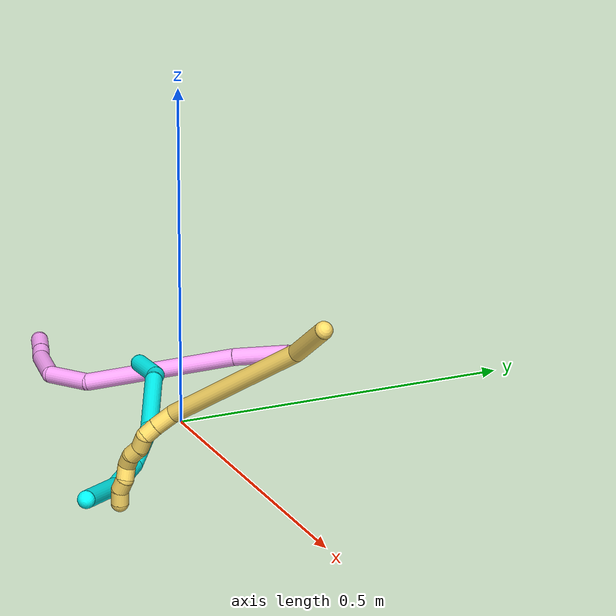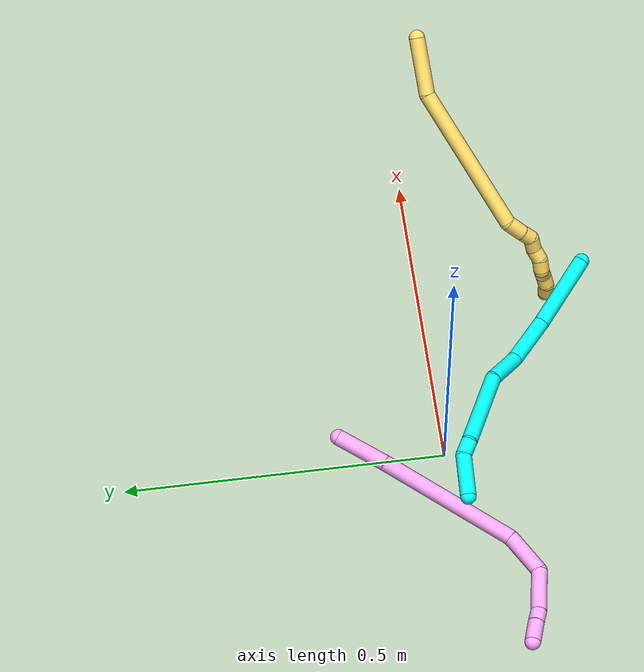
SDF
<sdf version="1.7">
 <world name="default">
  <model name="3">
   <static>0</static>
   <link name="3">
    <collision name="collision-cylinder-e_1_1_4">
     <pose>-0.026768 -0.00228 -0.054024 3.09941 -0.459675 -2.96178</pose>
     <geometry><cylinder><radius>0.0125</radius><length>0.12067</length></cylinder></geometry>
     <surface>
      <friction><ode><mu>1.16</mu><mu2>1.16</mu2><slip1>0</slip1><slip2>0</slip2></ode></friction>
      <contact><ode><kp>1e+06</kp><kd>1</kd><max_vel>0</max_vel><min_depth>0.001</min_depth></ode></contact>
     </surface>
    </collision>
    <visual name="visual-cylinder-e_1_1_4">
     <pose>-0.026768 -0.00228 -0.054024 3.09941 -0.459675 -2.96178</pose>
     <geometry><cylinder><radius>0.0125</radius><length>0.12067</length></cylinder></geometry>
     <material><ambient>0.003922 1 0.996078 1</ambient></material>
    </visual>
    <collision name="collision-cylinder-e_2_4_5">
     <pose>-0.062821 -0.006973 -0.147332 3.08026 -0.231665 -2.62602</pose>
     <geometry><cylinder><radius>0.0125</radius><length>0.080879</length></cylinder></geometry>
     <surface>
      <friction><ode><mu>1.16</mu><mu2>1.16</mu2><slip1>0</slip1><slip2>0</slip2></ode></friction>
      <contact><ode><kp>1e+06</kp><kd>1</kd><max_vel>0</max_vel><min_depth>0.001</min_depth></ode></contact>
     </surface>
    </collision>
    <visual name="visual-cylinder-e_2_4_5">
     <pose>-0.062821 -0.006973 -0.147332 3.08026 -0.231665 -2.62602</pose>
     <geometry><cylinder><radius>0.0125</radius><length>0.080879</length></cylinder></geometry>
     <material><ambient>0.003922 1 0.996078 1</ambient></material>
    </visual>
    <collision name="collision-cylinder-e_3_5_6">
     <pose>-0.065086 -0.013729 -0.221105 3.01629 0.199267 2.02075</pose>
     <geometry><cylinder><radius>0.0125</radius><length>0.070924</length></cylinder></geometry>
     <surface>
      <friction><ode><mu>1.16</mu><mu2>1.16</mu2><slip1>0</slip1><slip2>0</slip2></ode></friction>
      <contact><ode><kp>1e+06</kp><kd>1</kd><max_vel>0</max_vel><min_depth>0.001</min_depth></ode></contact>
     </surface>
    </collision>
    <visual name="visual-cylinder-e_3_5_6">
     <pose>-0.065086 -0.013729 -0.221105 3.01629 0.199267 2.02075</pose>
     <geometry><cylinder><radius>0.0125</radius><length>0.070924</length></cylinder></geometry>
     <material><ambient>0.003922 1 0.996078 1</ambient></material>
    </visual>
    <collision name="collision-cylinder-e_4_6_7">
     <pose>-0.060006 -0.005666 -0.320783 -2.95352 -0.029225 0.307458</pose>
     <geometry><cylinder><radius>0.0125</radius><length>0.132777</length></cylinder></geometry>
     <surface>
      <friction><ode><mu>1.16</mu><mu2>1.16</mu2><slip1>0</slip1><slip2>0</slip2></ode></friction>
      <contact><ode><kp>1e+06</kp><kd>1</kd><max_vel>0</max_vel><min_depth>0.001</min_depth></ode></contact>
     </surface>
    </collision>
    <visual name="visual-cylinder-e_4_6_7">
     <pose>-0.060006 -0.005666 -0.320783 -2.95352 -0.029225 0.307458</pose>
     <geometry><cylinder><radius>0.0125</radius><length>0.132777</length></cylinder></geometry>
     <material><ambient>0.003922 1 0.996078 1</ambient></material>
    </visual>
    <collision name="collision-cylinder-e_5_7_8">
     <pose>-0.066024 0.008763 -0.398141 -2.97687 -0.319303 2.19418</pose>
     <geometry><cylinder><radius>0.0125</radius><length>0.025983</length></cylinder></geometry>
     <surface>
      <friction><ode><mu>1.16</mu><mu2>1.16</mu2><slip1>0</slip1><slip2>0</slip2></ode></friction>
      <contact><ode><kp>1e+06</kp><kd>1</kd><max_vel>0</max_vel><min_depth>0.001</min_depth></ode></contact>
     </surface>
    </collision>
    <visual name="visual-cylinder-e_5_7_8">
     <pose>-0.066024 0.008763 -0.398141 -2.97687 -0.319303 2.19418</pose>
     <geometry><cylinder><radius>0.0125</radius><length>0.025983</length></cylinder></geometry>
     <material><ambient>0.003922 1 0.996078 1</ambient></material>
    </visual>
    <collision name="collision-cylinder-e_6_8_2">
     <pose>-0.077264 0.030656 -0.437441 -2.50948 -0.209825 0.62303</pose>
     <geometry><cylinder><radius>0.0125</radius><length>0.068768</length></cylinder></geometry>
     <surface>
      <friction><ode><mu>1.16</mu><mu2>1.16</mu2><slip1>0</slip1><slip2>0</slip2></ode></friction>
      <contact><ode><kp>1e+06</kp><kd>1</kd><max_vel>0</max_vel><min_depth>0.001</min_depth></ode></contact>
     </surface>
    </collision>
    <visual name="visual-cylinder-e_6_8_2">
     <pose>-0.077264 0.030656 -0.437441 -2.50948 -0.209825 0.62303</pose>
     <geometry><cylinder><radius>0.0125</radius><length>0.068768</length></cylinder></geometry>
     <material><ambient>0.003922 1 0.996078 1</ambient></material>
    </visual>
    <collision name="collision-sphere-2">
     <pose>-0.084426 0.050526 -0.464573 0 -0 0</pose>
     <geometry><sphere><radius>0.0125</radius></sphere></geometry>
     <surface>
      <friction><ode><mu>1.16</mu><mu2>1.16</mu2><slip1>0</slip1><slip2>0</slip2></ode></friction>
      <contact><ode><kp>1e+06</kp><kd>1</kd><max_vel>0</max_vel><min_depth>0.001</min_depth></ode></contact>
     </surface>
    </collision>
    <visual name="visual-sphere-2">
     <pose>-0.084426 0.050526 -0.464573 0 -0 0</pose>
     <geometry><sphere><radius>0.0125</radius></sphere></geometry>
     <material><ambient>0.003922 1 0.996078 1</ambient></material>
    </visual>
    <collision name="collision-sphere-4">
     <pose>-0.053536 -0.00456 -0.108047 0 -0 0</pose>
     <geometry><sphere><radius>0.0125</radius></sphere></geometry>
     <surface>
      <friction><ode><mu>1.16</mu><mu2>1.16</mu2><slip1>0</slip1><slip2>0</slip2></ode></friction>
      <contact><ode><kp>1e+06</kp><kd>1</kd><max_vel>0</max_vel><min_depth>0.001</min_depth></ode></contact>
     </surface>
    </collision>
    <visual name="visual-sphere-4">
     <pose>-0.053536 -0.00456 -0.108047 0 -0 0</pose>
     <geometry><sphere><radius>0.0125</radius></sphere></geometry>
     <material><ambient>0.003922 1 0.996078 1</ambient></material>
    </visual>
    <collision name="collision-sphere-1">
     <geometry><sphere><radius>0.0125</radius></sphere></geometry>
     <surface>
      <friction><ode><mu>1.16</mu><mu2>1.16</mu2><slip1>0</slip1><slip2>0</slip2></ode></friction>
      <contact><ode><kp>1e+06</kp><kd>1</kd><max_vel>0</max_vel><min_depth>0.001</min_depth></ode></contact>
     </surface>
    </collision>
    <visual name="visual-sphere-1">
     <geometry><sphere><radius>0.0125</radius></sphere></geometry>
     <material><ambient>0.003922 1 0.996078 1</ambient></material>
    </visual>
    <collision name="collision-sphere-8">
     <pose>-0.070102 0.010785 -0.410309 0 -0 0</pose>
     <geometry><sphere><radius>0.0125</radius></sphere></geometry>
     <surface>
      <friction><ode><mu>1.16</mu><mu2>1.16</mu2><slip1>0</slip1><slip2>0</slip2></ode></friction>
      <contact><ode><kp>1e+06</kp><kd>1</kd><max_vel>0</max_vel><min_depth>0.001</min_depth></ode></contact>
     </surface>
    </collision>
    <visual name="visual-sphere-8">
     <pose>-0.070102 0.010785 -0.410309 0 -0 0</pose>
     <geometry><sphere><radius>0.0125</radius></sphere></geometry>
     <material><ambient>0.003922 1 0.996078 1</ambient></material>
    </visual>
    <collision name="collision-sphere-5">
     <pose>-0.072105 -0.009385 -0.186617 0 -0 0</pose>
     <geometry><sphere><radius>0.0125</radius></sphere></geometry>
     <surface>
      <friction><ode><mu>1.16</mu><mu2>1.16</mu2><slip1>0</slip1><slip2>0</slip2></ode></friction>
      <contact><ode><kp>1e+06</kp><kd>1</kd><max_vel>0</max_vel><min_depth>0.001</min_depth></ode></contact>
     </surface>
    </collision>
    <visual name="visual-sphere-5">
     <pose>-0.072105 -0.009385 -0.186617 0 -0 0</pose>
     <geometry><sphere><radius>0.0125</radius></sphere></geometry>
     <material><ambient>0.003922 1 0.996078 1</ambient></material>
    </visual>
    <collision name="collision-sphere-6">
     <pose>-0.058066 -0.018073 -0.255593 0 -0 0</pose>
     <geometry><sphere><radius>0.0125</radius></sphere></geometry>
     <surface>
      <friction><ode><mu>1.16</mu><mu2>1.16</mu2><slip1>0</slip1><slip2>0</slip2></ode></friction>
      <contact><ode><kp>1e+06</kp><kd>1</kd><max_vel>0</max_vel><min_depth>0.001</min_depth></ode></contact>
     </surface>
    </collision>
    <visual name="visual-sphere-6">
     <pose>-0.058066 -0.018073 -0.255593 0 -0 0</pose>
     <geometry><sphere><radius>0.0125</radius></sphere></geometry>
     <material><ambient>0.003922 1 0.996078 1</ambient></material>
    </visual>
    <collision name="collision-sphere-7">
     <pose>-0.061946 0.00674 -0.385973 0 -0 0</pose>
     <geometry><sphere><radius>0.0125</radius></sphere></geometry>
     <surface>
      <friction><ode><mu>1.16</mu><mu2>1.16</mu2><slip1>0</slip1><slip2>0</slip2></ode></friction>
      <contact><ode><kp>1e+06</kp><kd>1</kd><max_vel>0</max_vel><min_depth>0.001</min_depth></ode></contact>
     </surface>
    </collision>
    <visual name="visual-sphere-7">
     <pose>-0.061946 0.00674 -0.385973 0 -0 0</pose>
     <geometry><sphere><radius>0.0125</radius></sphere></geometry>
     <material><ambient>0.003922 1 0.996078 1</ambient></material>
    </visual>
    <inertial>
     <pose>-0.055846 -0.000459 -0.234272 0 -0 0</pose>
     <mass>0.5</mass>
     <inertia><ixx>8.1e-05</ixx><ixy>0</ixy><ixz>0</ixz><iyy>6.7e-05</iyy><iyz>0</iyz><izz>5e-06</izz></inertia>
    </inertial>
   </link>
   <pose>0.300558 -0.264771 0.039823 -2.69139 -1.32094 -1.09134</pose>
  </model>
  <model name="4">
   <static>0</static>
   <link name="4">
    <collision name="collision-cylinder-e_1_1_4">
     <pose>-0.009968 -0.016858 0.035673 0.44146 -0.247468 -0.055799</pose>
     <geometry><cylinder><radius>0.0125</radius><length>0.08139</length></cylinder></geometry>
     <surface>
      <friction><ode><mu>1.16</mu><mu2>1.16</mu2><slip1>0</slip1><slip2>0</slip2></ode></friction>
      <contact><ode><kp>1e+06</kp><kd>1</kd><max_vel>0</max_vel><min_depth>0.001</min_depth></ode></contact>
     </surface>
    </collision>
    <visual name="visual-cylinder-e_1_1_4">
     <pose>-0.009968 -0.016858 0.035673 0.44146 -0.247468 -0.055799</pose>
     <geometry><cylinder><radius>0.0125</radius><length>0.08139</length></cylinder></geometry>
     <material><ambient>1 0.65098 0.996078 1</ambient></material>
    </visual>
    <collision name="collision-cylinder-e_2_4_5">
     <pose>-0.056264 -0.08516 0.164105 0.506366 -0.329964 -0.086103</pose>
     <geometry><cylinder><radius>0.0125</radius><length>0.224238</length></cylinder></geometry>
     <surface>
      <friction><ode><mu>1.16</mu><mu2>1.16</mu2><slip1>0</slip1><slip2>0</slip2></ode></friction>
      <contact><ode><kp>1e+06</kp><kd>1</kd><max_vel>0</max_vel><min_depth>0.001</min_depth></ode></contact>
     </surface>
    </collision>
    <visual name="visual-cylinder-e_2_4_5">
     <pose>-0.056264 -0.08516 0.164105 0.506366 -0.329964 -0.086103</pose>
     <geometry><cylinder><radius>0.0125</radius><length>0.224238</length></cylinder></geometry>
     <material><ambient>1 0.65098 0.996078 1</ambient></material>
    </visual>
    <collision name="collision-cylinder-e_3_5_6">
     <pose>-0.104803 -0.136843 0.289069 0.007411 -0.362425 -0.001358</pose>
     <geometry><cylinder><radius>0.0125</radius><length>0.068883</length></cylinder></geometry>
     <surface>
      <friction><ode><mu>1.16</mu><mu2>1.16</mu2><slip1>0</slip1><slip2>0</slip2></ode></friction>
      <contact><ode><kp>1e+06</kp><kd>1</kd><max_vel>0</max_vel><min_depth>0.001</min_depth></ode></contact>
     </surface>
    </collision>
    <visual name="visual-cylinder-e_3_5_6">
     <pose>-0.104803 -0.136843 0.289069 0.007411 -0.362425 -0.001358</pose>
     <geometry><cylinder><radius>0.0125</radius><length>0.068883</length></cylinder></geometry>
     <material><ambient>1 0.65098 0.996078 1</ambient></material>
    </visual>
    <collision name="collision-cylinder-e_4_6_7">
     <pose>-0.133761 -0.1165 0.343242 -0.752784 -0.507683 0.204364</pose>
     <geometry><cylinder><radius>0.0125</radius><length>0.068898</length></cylinder></geometry>
     <surface>
      <friction><ode><mu>1.16</mu><mu2>1.16</mu2><slip1>0</slip1><slip2>0</slip2></ode></friction>
      <contact><ode><kp>1e+06</kp><kd>1</kd><max_vel>0</max_vel><min_depth>0.001</min_depth></ode></contact>
     </surface>
    </collision>
    <visual name="visual-cylinder-e_4_6_7">
     <pose>-0.133761 -0.1165 0.343242 -0.752784 -0.507683 0.204364</pose>
     <geometry><cylinder><radius>0.0125</radius><length>0.068898</length></cylinder></geometry>
     <material><ambient>1 0.65098 0.996078 1</ambient></material>
    </visual>
    <collision name="collision-cylinder-e_5_7_8">
     <pose>-0.154417 -0.087739 0.370857 -0.966659 -0.374657 0.198319</pose>
     <geometry><cylinder><radius>0.0125</radius><length>0.021359</length></cylinder></geometry>
     <surface>
      <friction><ode><mu>1.16</mu><mu2>1.16</mu2><slip1>0</slip1><slip2>0</slip2></ode></friction>
      <contact><ode><kp>1e+06</kp><kd>1</kd><max_vel>0</max_vel><min_depth>0.001</min_depth></ode></contact>
     </surface>
    </collision>
    <visual name="visual-cylinder-e_5_7_8">
     <pose>-0.154417 -0.087739 0.370857 -0.966659 -0.374657 0.198319</pose>
     <geometry><cylinder><radius>0.0125</radius><length>0.021359</length></cylinder></geometry>
     <material><ambient>1 0.65098 0.996078 1</ambient></material>
    </visual>
    <collision name="collision-cylinder-e_6_8_2">
     <pose>-0.165299 -0.066727 0.386353 -0.916133 -0.407052 0.202814</pose>
     <geometry><cylinder><radius>0.0125</radius><length>0.035232</length></cylinder></geometry>
     <surface>
      <friction><ode><mu>1.16</mu><mu2>1.16</mu2><slip1>0</slip1><slip2>0</slip2></ode></friction>
      <contact><ode><kp>1e+06</kp><kd>1</kd><max_vel>0</max_vel><min_depth>0.001</min_depth></ode></contact>
     </surface>
    </collision>
    <visual name="visual-cylinder-e_6_8_2">
     <pose>-0.165299 -0.066727 0.386353 -0.916133 -0.407052 0.202814</pose>
     <geometry><cylinder><radius>0.0125</radius><length>0.035232</length></cylinder></geometry>
     <material><ambient>1 0.65098 0.996078 1</ambient></material>
    </visual>
    <collision name="collision-sphere-2">
     <pose>-0.172274 -0.053895 0.396202 0 -0 0</pose>
     <geometry><sphere><radius>0.0125</radius></sphere></geometry>
     <surface>
      <friction><ode><mu>1.16</mu><mu2>1.16</mu2><slip1>0</slip1><slip2>0</slip2></ode></friction>
      <contact><ode><kp>1e+06</kp><kd>1</kd><max_vel>0</max_vel><min_depth>0.001</min_depth></ode></contact>
     </surface>
    </collision>
    <visual name="visual-sphere-2">
     <pose>-0.172274 -0.053895 0.396202 0 -0 0</pose>
     <geometry><sphere><radius>0.0125</radius></sphere></geometry>
     <material><ambient>1 0.65098 0.996078 1</ambient></material>
    </visual>
    <collision name="collision-sphere-4">
     <pose>-0.019936 -0.033715 0.071345 0 -0 0</pose>
     <geometry><sphere><radius>0.0125</radius></sphere></geometry>
     <surface>
      <friction><ode><mu>1.16</mu><mu2>1.16</mu2><slip1>0</slip1><slip2>0</slip2></ode></friction>
      <contact><ode><kp>1e+06</kp><kd>1</kd><max_vel>0</max_vel><min_depth>0.001</min_depth></ode></contact>
     </surface>
    </collision>
    <visual name="visual-sphere-4">
     <pose>-0.019936 -0.033715 0.071345 0 -0 0</pose>
     <geometry><sphere><radius>0.0125</radius></sphere></geometry>
     <material><ambient>1 0.65098 0.996078 1</ambient></material>
    </visual>
    <collision name="collision-sphere-1">
     <geometry><sphere><radius>0.0125</radius></sphere></geometry>
     <surface>
      <friction><ode><mu>1.16</mu><mu2>1.16</mu2><slip1>0</slip1><slip2>0</slip2></ode></friction>
      <contact><ode><kp>1e+06</kp><kd>1</kd><max_vel>0</max_vel><min_depth>0.001</min_depth></ode></contact>
     </surface>
    </collision>
    <visual name="visual-sphere-1">
     <geometry><sphere><radius>0.0125</radius></sphere></geometry>
     <material><ambient>1 0.65098 0.996078 1</ambient></material>
    </visual>
    <collision name="collision-sphere-8">
     <pose>-0.158325 -0.079559 0.376503 0 -0 0</pose>
     <geometry><sphere><radius>0.0125</radius></sphere></geometry>
     <surface>
      <friction><ode><mu>1.16</mu><mu2>1.16</mu2><slip1>0</slip1><slip2>0</slip2></ode></friction>
      <contact><ode><kp>1e+06</kp><kd>1</kd><max_vel>0</max_vel><min_depth>0.001</min_depth></ode></contact>
     </surface>
    </collision>
    <visual name="visual-sphere-8">
     <pose>-0.158325 -0.079559 0.376503 0 -0 0</pose>
     <geometry><sphere><radius>0.0125</radius></sphere></geometry>
     <material><ambient>1 0.65098 0.996078 1</ambient></material>
    </visual>
    <collision name="collision-sphere-5">
     <pose>-0.092592 -0.136604 0.256865 0 -0 0</pose>
     <geometry><sphere><radius>0.0125</radius></sphere></geometry>
     <surface>
      <friction><ode><mu>1.16</mu><mu2>1.16</mu2><slip1>0</slip1><slip2>0</slip2></ode></friction>
      <contact><ode><kp>1e+06</kp><kd>1</kd><max_vel>0</max_vel><min_depth>0.001</min_depth></ode></contact>
     </surface>
    </collision>
    <visual name="visual-sphere-5">
     <pose>-0.092592 -0.136604 0.256865 0 -0 0</pose>
     <geometry><sphere><radius>0.0125</radius></sphere></geometry>
     <material><ambient>1 0.65098 0.996078 1</ambient></material>
    </visual>
    <collision name="collision-sphere-6">
     <pose>-0.117013 -0.137082 0.321272 0 -0 0</pose>
     <geometry><sphere><radius>0.0125</radius></sphere></geometry>
     <surface>
      <friction><ode><mu>1.16</mu><mu2>1.16</mu2><slip1>0</slip1><slip2>0</slip2></ode></friction>
      <contact><ode><kp>1e+06</kp><kd>1</kd><max_vel>0</max_vel><min_depth>0.001</min_depth></ode></contact>
     </surface>
    </collision>
    <visual name="visual-sphere-6">
     <pose>-0.117013 -0.137082 0.321272 0 -0 0</pose>
     <geometry><sphere><radius>0.0125</radius></sphere></geometry>
     <material><ambient>1 0.65098 0.996078 1</ambient></material>
    </visual>
    <collision name="collision-sphere-7">
     <pose>-0.150509 -0.095919 0.365211 0 -0 0</pose>
     <geometry><sphere><radius>0.0125</radius></sphere></geometry>
     <surface>
      <friction><ode><mu>1.16</mu><mu2>1.16</mu2><slip1>0</slip1><slip2>0</slip2></ode></friction>
      <contact><ode><kp>1e+06</kp><kd>1</kd><max_vel>0</max_vel><min_depth>0.001</min_depth></ode></contact>
     </surface>
    </collision>
    <visual name="visual-sphere-7">
     <pose>-0.150509 -0.095919 0.365211 0 -0 0</pose>
     <geometry><sphere><radius>0.0125</radius></sphere></geometry>
     <material><ambient>1 0.65098 0.996078 1</ambient></material>
    </visual>
    <inertial>
     <pose>-0.07797 -0.084292 0.209592 0 -0 0</pose>
     <mass>0.5</mass>
     <inertia>
      <ixx>0.000913</ixx>
      <ixy>0</ixy>
      <ixz>0</ixz>
      <iyy>0.000863</iyy>
      <iyz>0</iyz>
      <izz>0.00081</izz>
     </inertia>
    </inertial>
   </link>
   <pose>0.008131 0.16535 0.081891 0.985833 -1.04869 -0.376533</pose>
  </model>
  <model name="5">
   <static>0</static>
   <link name="5">
    <collision name="collision-cylinder-e_1_1_4">
     <pose>0.002617 -0.000841 0.044833 0.018763 0.058299 0.000547</pose>
     <geometry><cylinder><radius>0.0125</radius><length>0.089834</length></cylinder></geometry>
     <surface>
      <friction><ode><mu>1.16</mu><mu2>1.16</mu2><slip1>0</slip1><slip2>0</slip2></ode></friction>
      <contact><ode><kp>1e+06</kp><kd>1</kd><max_vel>0</max_vel><min_depth>0.001</min_depth></ode></contact>
     </surface>
    </collision>
    <visual name="visual-cylinder-e_1_1_4">
     <pose>0.002617 -0.000841 0.044833 0.018763 0.058299 0.000547</pose>
     <geometry><cylinder><radius>0.0125</radius><length>0.089834</length></cylinder></geometry>
     <material><ambient>1 0.858824 0.4 1</ambient></material>
    </visual>
    <collision name="collision-cylinder-e_2_4_5">
     <pose>0.055391 -0.013055 0.197097 0.105468 0.434659 0.02331</pose>
     <geometry><cylinder><radius>0.0125</radius><length>0.238215</length></cylinder></geometry>
     <surface>
      <friction><ode><mu>1.16</mu><mu2>1.16</mu2><slip1>0</slip1><slip2>0</slip2></ode></friction>
      <contact><ode><kp>1e+06</kp><kd>1</kd><max_vel>0</max_vel><min_depth>0.001</min_depth></ode></contact>
     </surface>
    </collision>
    <visual name="visual-cylinder-e_2_4_5">
     <pose>0.055391 -0.013055 0.197097 0.105468 0.434659 0.02331</pose>
     <geometry><cylinder><radius>0.0125</radius><length>0.238215</length></cylinder></geometry>
     <material><ambient>1 0.858824 0.4 1</ambient></material>
    </visual>
    <collision name="collision-cylinder-e_3_5_6">
     <pose>0.11514 -0.031126 0.314067 0.612225 0.688691 0.225726</pose>
     <geometry><cylinder><radius>0.0125</radius><length>0.03019</length></cylinder></geometry>
     <surface>
      <friction><ode><mu>1.16</mu><mu2>1.16</mu2><slip1>0</slip1><slip2>0</slip2></ode></friction>
      <contact><ode><kp>1e+06</kp><kd>1</kd><max_vel>0</max_vel><min_depth>0.001</min_depth></ode></contact>
     </surface>
    </collision>
    <visual name="visual-cylinder-e_3_5_6">
     <pose>0.11514 -0.031126 0.314067 0.612225 0.688691 0.225726</pose>
     <geometry><cylinder><radius>0.0125</radius><length>0.03019</length></cylinder></geometry>
     <material><ambient>1 0.858824 0.4 1</ambient></material>
    </visual>
    <collision name="collision-cylinder-e_4_6_7">
     <pose>0.131 -0.043319 0.329268 0.770351 0.671113 0.280919</pose>
     <geometry><cylinder><radius>0.0125</radius><length>0.020154</length></cylinder></geometry>
     <surface>
      <friction><ode><mu>1.16</mu><mu2>1.16</mu2><slip1>0</slip1><slip2>0</slip2></ode></friction>
      <contact><ode><kp>1e+06</kp><kd>1</kd><max_vel>0</max_vel><min_depth>0.001</min_depth></ode></contact>
     </surface>
    </collision>
    <visual name="visual-cylinder-e_4_6_7">
     <pose>0.131 -0.043319 0.329268 0.770351 0.671113 0.280919</pose>
     <geometry><cylinder><radius>0.0125</radius><length>0.020154</length></cylinder></geometry>
     <material><ambient>1 0.858824 0.4 1</ambient></material>
    </visual>
    <collision name="collision-cylinder-e_5_7_8">
     <pose>0.137822 -0.054393 0.344115 0.545834 0.051697 0.014473</pose>
     <geometry><cylinder><radius>0.0125</radius><length>0.021519</length></cylinder></geometry>
     <surface>
      <friction><ode><mu>1.16</mu><mu2>1.16</mu2><slip1>0</slip1><slip2>0</slip2></ode></friction>
      <contact><ode><kp>1e+06</kp><kd>1</kd><max_vel>0</max_vel><min_depth>0.001</min_depth></ode></contact>
     </surface>
    </collision>
    <visual name="visual-cylinder-e_5_7_8">
     <pose>0.137822 -0.054393 0.344115 0.545834 0.051697 0.014473</pose>
     <geometry><cylinder><radius>0.0125</radius><length>0.021519</length></cylinder></geometry>
     <material><ambient>1 0.858824 0.4 1</ambient></material>
    </visual>
    <collision name="collision-cylinder-e_6_8_9">
     <pose>0.142035 -0.062834 0.362188 0.311583 0.373192 0.059288</pose>
     <geometry><cylinder><radius>0.0125</radius><length>0.020058</length></cylinder></geometry>
     <surface>
      <friction><ode><mu>1.16</mu><mu2>1.16</mu2><slip1>0</slip1><slip2>0</slip2></ode></friction>
      <contact><ode><kp>1e+06</kp><kd>1</kd><max_vel>0</max_vel><min_depth>0.001</min_depth></ode></contact>
     </surface>
    </collision>
    <visual name="visual-cylinder-e_6_8_9">
     <pose>0.142035 -0.062834 0.362188 0.311583 0.373192 0.059288</pose>
     <geometry><cylinder><radius>0.0125</radius><length>0.020058</length></cylinder></geometry>
     <material><ambient>1 0.858824 0.4 1</ambient></material>
    </visual>
    <collision name="collision-cylinder-e_7_9_10">
     <pose>0.14564 -0.069432 0.380361 0.382529 -0.00511 -0.000989</pose>
     <geometry><cylinder><radius>0.0125</radius><length>0.020015</length></cylinder></geometry>
     <surface>
      <friction><ode><mu>1.16</mu><mu2>1.16</mu2><slip1>0</slip1><slip2>0</slip2></ode></friction>
      <contact><ode><kp>1e+06</kp><kd>1</kd><max_vel>0</max_vel><min_depth>0.001</min_depth></ode></contact>
     </surface>
    </collision>
    <visual name="visual-cylinder-e_7_9_10">
     <pose>0.14564 -0.069432 0.380361 0.382529 -0.00511 -0.000989</pose>
     <geometry><cylinder><radius>0.0125</radius><length>0.020015</length></cylinder></geometry>
     <material><ambient>1 0.858824 0.4 1</ambient></material>
    </visual>
    <collision name="collision-cylinder-e_8_10_11">
     <pose>0.145858 -0.081987 0.39436 1.07982 0.026862 0.016099</pose>
     <geometry><cylinder><radius>0.0125</radius><length>0.020009</length></cylinder></geometry>
     <surface>
      <friction><ode><mu>1.16</mu><mu2>1.16</mu2><slip1>0</slip1><slip2>0</slip2></ode></friction>
      <contact><ode><kp>1e+06</kp><kd>1</kd><max_vel>0</max_vel><min_depth>0.001</min_depth></ode></contact>
     </surface>
    </collision>
    <visual name="visual-cylinder-e_8_10_11">
     <pose>0.145858 -0.081987 0.39436 1.07982 0.026862 0.016099</pose>
     <geometry><cylinder><radius>0.0125</radius><length>0.020009</length></cylinder></geometry>
     <material><ambient>1 0.858824 0.4 1</ambient></material>
    </visual>
    <collision name="collision-cylinder-e_9_11_12">
     <pose>0.147182 -0.095938 0.407594 0.542142 0.105731 0.029409</pose>
     <geometry><cylinder><radius>0.0125</radius><length>0.020001</length></cylinder></geometry>
     <surface>
      <friction><ode><mu>1.16</mu><mu2>1.16</mu2><slip1>0</slip1><slip2>0</slip2></ode></friction>
      <contact><ode><kp>1e+06</kp><kd>1</kd><max_vel>0</max_vel><min_depth>0.001</min_depth></ode></contact>
     </surface>
    </collision>
    <visual name="visual-cylinder-e_9_11_12">
     <pose>0.147182 -0.095938 0.407594 0.542142 0.105731 0.029409</pose>
     <geometry><cylinder><radius>0.0125</radius><length>0.020001</length></cylinder></geometry>
     <material><ambient>1 0.858824 0.4 1</ambient></material>
    </visual>
    <collision name="collision-cylinder-e_10_12_2">
     <pose>0.146256 -0.107948 0.423099 0.77767 -0.199364 -0.081904</pose>
     <geometry><cylinder><radius>0.0125</radius><length>0.020006</length></cylinder></geometry>
     <surface>
      <friction><ode><mu>1.16</mu><mu2>1.16</mu2><slip1>0</slip1><slip2>0</slip2></ode></friction>
      <contact><ode><kp>1e+06</kp><kd>1</kd><max_vel>0</max_vel><min_depth>0.001</min_depth></ode></contact>
     </surface>
    </collision>
    <visual name="visual-cylinder-e_10_12_2">
     <pose>0.146256 -0.107948 0.423099 0.77767 -0.199364 -0.081904</pose>
     <geometry><cylinder><radius>0.0125</radius><length>0.020006</length></cylinder></geometry>
     <material><ambient>1 0.858824 0.4 1</ambient></material>
    </visual>
    <collision name="collision-sphere-2">
     <pose>0.144275 -0.114827 0.430086 0 -0 0</pose>
     <geometry><sphere><radius>0.0125</radius></sphere></geometry>
     <surface>
      <friction><ode><mu>1.16</mu><mu2>1.16</mu2><slip1>0</slip1><slip2>0</slip2></ode></friction>
      <contact><ode><kp>1e+06</kp><kd>1</kd><max_vel>0</max_vel><min_depth>0.001</min_depth></ode></contact>
     </surface>
    </collision>
    <visual name="visual-sphere-2">
     <pose>0.144275 -0.114827 0.430086 0 -0 0</pose>
     <geometry><sphere><radius>0.0125</radius></sphere></geometry>
     <material><ambient>1 0.858824 0.4 1</ambient></material>
    </visual>
    <collision name="collision-sphere-12">
     <pose>0.148237 -0.101069 0.416113 0 -0 0</pose>
     <geometry><sphere><radius>0.0125</radius></sphere></geometry>
     <surface>
      <friction><ode><mu>1.16</mu><mu2>1.16</mu2><slip1>0</slip1><slip2>0</slip2></ode></friction>
      <contact><ode><kp>1e+06</kp><kd>1</kd><max_vel>0</max_vel><min_depth>0.001</min_depth></ode></contact>
     </surface>
    </collision>
    <visual name="visual-sphere-12">
     <pose>0.148237 -0.101069 0.416113 0 -0 0</pose>
     <geometry><sphere><radius>0.0125</radius></sphere></geometry>
     <material><ambient>1 0.858824 0.4 1</ambient></material>
    </visual>
    <collision name="collision-sphere-11">
     <pose>0.146126 -0.090806 0.399076 0 -0 0</pose>
     <geometry><sphere><radius>0.0125</radius></sphere></geometry>
     <surface>
      <friction><ode><mu>1.16</mu><mu2>1.16</mu2><slip1>0</slip1><slip2>0</slip2></ode></friction>
      <contact><ode><kp>1e+06</kp><kd>1</kd><max_vel>0</max_vel><min_depth>0.001</min_depth></ode></contact>
     </surface>
    </collision>
    <visual name="visual-sphere-11">
     <pose>0.146126 -0.090806 0.399076 0 -0 0</pose>
     <geometry><sphere><radius>0.0125</radius></sphere></geometry>
     <material><ambient>1 0.858824 0.4 1</ambient></material>
    </visual>
    <collision name="collision-sphere-10">
     <pose>0.145589 -0.073168 0.389645 0 -0 0</pose>
     <geometry><sphere><radius>0.0125</radius></sphere></geometry>
     <surface>
      <friction><ode><mu>1.16</mu><mu2>1.16</mu2><slip1>0</slip1><slip2>0</slip2></ode></friction>
      <contact><ode><kp>1e+06</kp><kd>1</kd><max_vel>0</max_vel><min_depth>0.001</min_depth></ode></contact>
     </surface>
    </collision>
    <visual name="visual-sphere-10">
     <pose>0.145589 -0.073168 0.389645 0 -0 0</pose>
     <geometry><sphere><radius>0.0125</radius></sphere></geometry>
     <material><ambient>1 0.858824 0.4 1</ambient></material>
    </visual>
    <collision name="collision-sphere-9">
     <pose>0.145691 -0.065697 0.371077 0 -0 0</pose>
     <geometry><sphere><radius>0.0125</radius></sphere></geometry>
     <surface>
      <friction><ode><mu>1.16</mu><mu2>1.16</mu2><slip1>0</slip1><slip2>0</slip2></ode></friction>
      <contact><ode><kp>1e+06</kp><kd>1</kd><max_vel>0</max_vel><min_depth>0.001</min_depth></ode></contact>
     </surface>
    </collision>
    <visual name="visual-sphere-9">
     <pose>0.145691 -0.065697 0.371077 0 -0 0</pose>
     <geometry><sphere><radius>0.0125</radius></sphere></geometry>
     <material><ambient>1 0.858824 0.4 1</ambient></material>
    </visual>
    <collision name="collision-sphere-4">
     <pose>0.005234 -0.001683 0.089665 0 -0 0</pose>
     <geometry><sphere><radius>0.0125</radius></sphere></geometry>
     <surface>
      <friction><ode><mu>1.16</mu><mu2>1.16</mu2><slip1>0</slip1><slip2>0</slip2></ode></friction>
      <contact><ode><kp>1e+06</kp><kd>1</kd><max_vel>0</max_vel><min_depth>0.001</min_depth></ode></contact>
     </surface>
    </collision>
    <visual name="visual-sphere-4">
     <pose>0.005234 -0.001683 0.089665 0 -0 0</pose>
     <geometry><sphere><radius>0.0125</radius></sphere></geometry>
     <material><ambient>1 0.858824 0.4 1</ambient></material>
    </visual>
    <collision name="collision-sphere-1">
     <geometry><sphere><radius>0.0125</radius></sphere></geometry>
     <surface>
      <friction><ode><mu>1.16</mu><mu2>1.16</mu2><slip1>0</slip1><slip2>0</slip2></ode></friction>
      <contact><ode><kp>1e+06</kp><kd>1</kd><max_vel>0</max_vel><min_depth>0.001</min_depth></ode></contact>
     </surface>
    </collision>
    <visual name="visual-sphere-1">
     <geometry><sphere><radius>0.0125</radius></sphere></geometry>
     <material><ambient>1 0.858824 0.4 1</ambient></material>
    </visual>
    <collision name="collision-sphere-8">
     <pose>0.138378 -0.059971 0.353299 0 -0 0</pose>
     <geometry><sphere><radius>0.0125</radius></sphere></geometry>
     <surface>
      <friction><ode><mu>1.16</mu><mu2>1.16</mu2><slip1>0</slip1><slip2>0</slip2></ode></friction>
      <contact><ode><kp>1e+06</kp><kd>1</kd><max_vel>0</max_vel><min_depth>0.001</min_depth></ode></contact>
     </surface>
    </collision>
    <visual name="visual-sphere-8">
     <pose>0.138378 -0.059971 0.353299 0 -0 0</pose>
     <geometry><sphere><radius>0.0125</radius></sphere></geometry>
     <material><ambient>1 0.858824 0.4 1</ambient></material>
    </visual>
    <collision name="collision-sphere-5">
     <pose>0.105547 -0.024428 0.304529 0 -0 0</pose>
     <geometry><sphere><radius>0.0125</radius></sphere></geometry>
     <surface>
      <friction><ode><mu>1.16</mu><mu2>1.16</mu2><slip1>0</slip1><slip2>0</slip2></ode></friction>
      <contact><ode><kp>1e+06</kp><kd>1</kd><max_vel>0</max_vel><min_depth>0.001</min_depth></ode></contact>
     </surface>
    </collision>
    <visual name="visual-sphere-5">
     <pose>0.105547 -0.024428 0.304529 0 -0 0</pose>
     <geometry><sphere><radius>0.0125</radius></sphere></geometry>
     <material><ambient>1 0.858824 0.4 1</ambient></material>
    </visual>
    <collision name="collision-sphere-6">
     <pose>0.124733 -0.037824 0.323605 0 -0 0</pose>
     <geometry><sphere><radius>0.0125</radius></sphere></geometry>
     <surface>
      <friction><ode><mu>1.16</mu><mu2>1.16</mu2><slip1>0</slip1><slip2>0</slip2></ode></friction>
      <contact><ode><kp>1e+06</kp><kd>1</kd><max_vel>0</max_vel><min_depth>0.001</min_depth></ode></contact>
     </surface>
    </collision>
    <visual name="visual-sphere-6">
     <pose>0.124733 -0.037824 0.323605 0 -0 0</pose>
     <geometry><sphere><radius>0.0125</radius></sphere></geometry>
     <material><ambient>1 0.858824 0.4 1</ambient></material>
    </visual>
    <collision name="collision-sphere-7">
     <pose>0.137266 -0.048815 0.334932 0 -0 0</pose>
     <geometry><sphere><radius>0.0125</radius></sphere></geometry>
     <surface>
      <friction><ode><mu>1.16</mu><mu2>1.16</mu2><slip1>0</slip1><slip2>0</slip2></ode></friction>
      <contact><ode><kp>1e+06</kp><kd>1</kd><max_vel>0</max_vel><min_depth>0.001</min_depth></ode></contact>
     </surface>
    </collision>
    <visual name="visual-sphere-7">
     <pose>0.137266 -0.048815 0.334932 0 -0 0</pose>
     <geometry><sphere><radius>0.0125</radius></sphere></geometry>
     <material><ambient>1 0.858824 0.4 1</ambient></material>
    </visual>
    <inertial>
     <pose>0.074128 -0.029075 0.227774 0 -0 0</pose>
     <mass>0.5</mass>
     <inertia>
      <ixx>0.001142</ixx>
      <ixy>0</ixy>
      <ixz>0</ixz>
      <iyy>0.001222</iyy>
      <iyz>0</iyz>
      <izz>-0.000335</izz>
     </inertia>
    </inertial>
   </link>
   <pose>0.55726 -0.030535 0.33572 2.23433 -0.178363 -1.68879</pose>
  </model>
 </world>
</sdf>
